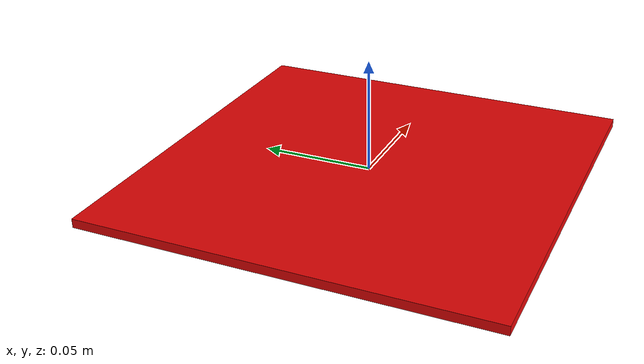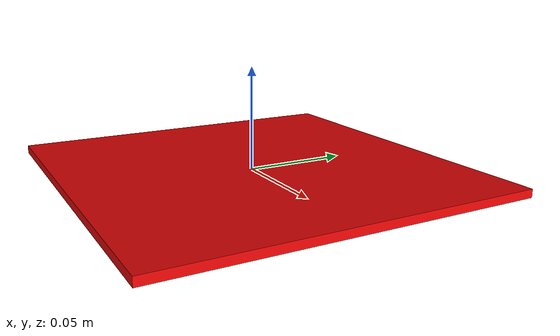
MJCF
<mujoco model="pad_red">
  <worldbody>
    <body name="pad_red">
      <geom name="pad_red_geom" type="box" size="0.09 0.09 0.002"
            rgba="0.90 0.02 0.02 1" contype="0" conaffinity="0"/>
    </body>
  </worldbody>
</mujoco>
